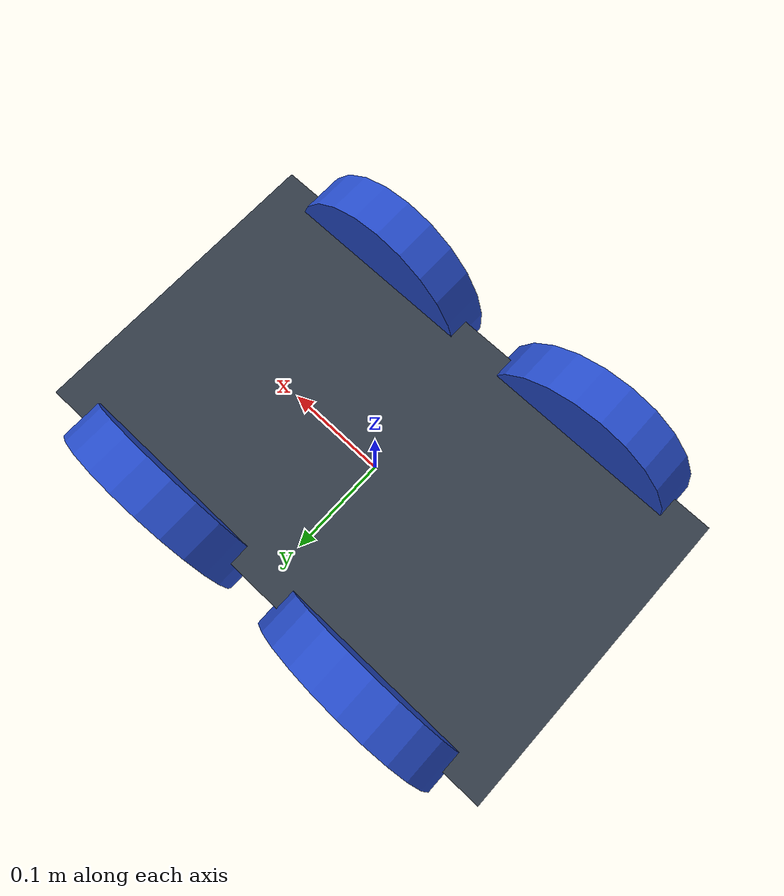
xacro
<?xml version="1.0" ?>
<robot name="mybot" xmlns:xacro="https://www.ros.org/wiki/xacro" >
<material name="black">
 <color rgba="0.0 0.0 0.0 1.0"/>
 </material>
 <material name="blue">
 <color rgba="0.203125 0.23828125 0.28515625 1.0"/>
 </material>
 <material name="green">
 <color rgba="0.0 0.8 0.0 1.0"/>
 </material>
 <material name="grey">
 <color rgba="0.2 0.2 0.2 1.0"/>
 </material>
 <material name="orange">
 <color rgba="1.0 0.423529411765 0.0392156862745 1.0"/>
 </material>
 <material name="brown">
 <color rgba="0.870588235294 0.811764705882 0.764705882353 1.0"/>
 </material>
 <material name="red">
 <color rgba="0.80078125 0.12890625 0.1328125 1.0"/>
 </material>
 <material name="white">
 <color rgba="1.0 1.0 1.0 1.0"/>
 </material>

 <gazebo reference="link_chassis">
 <material>Gazebo/Red</material>
 </gazebo>
 <gazebo reference="link_left_wheel_f">
 <material>Gazebo/Blue</material>
 </gazebo>
 <gazebo reference="link_right_wheel_f">
 <material>Gazebo/Blue</material>
 </gazebo>
 <gazebo reference="link_left_wheel_b">
 <material>Gazebo/Blue</material>
 </gazebo>
 <gazebo reference="link_right_wheel_b">
 <material>Gazebo/Blue</material>
 </gazebo>

<gazebo>
  <plugin name="skid_steer_drive_controller" filename="libgazebo_ros_skid_steer_drive.so">
    <updateRate>100.0</updateRate>
    <robotNamespace>/</robotNamespace>
    <leftFrontJoint>joint_left_wheel_f</leftFrontJoint>
    <rightFrontJoint>joint_right_wheel_f</rightFrontJoint>
    <leftRearJoint>joint_left_wheel_b</leftRearJoint>
    <rightRearJoint>joint_right_wheel_b</rightRearJoint>
    <wheelSeparation>0.4</wheelSeparation>
    <wheelDiameter>0.215</wheelDiameter>
    <robotBaseFrame>link_chassis</robotBaseFrame>
    <torque>20</torque>
    <topicName>cmd_vel</topicName>
    <broadcastTF>false</broadcastTF>
  </plugin>
</gazebo>

<link name="link_chassis">
 <!-- pose and inertial -->
 <pose>0 0 0.1 0 0 0</pose>
 <inertial>
    <mass value="5"/>
    <origin rpy="0 0 0" xyz="0 0 0.1"/>
    <inertia ixx="0.0395416666667" ixy="0" ixz="0" iyy="0.106208333333" iyz="0" izz="0.106208333333"/>
 </inertial>

 <!---Body-->
 <collision name="collision_chassis">
    <geometry>
        <box size="0.5 0.3 0.07"/>
    </geometry>
 </collision>
 <visual>
    <origin rpy="0 0 0" xyz="0 0 0"/>
    <geometry>
        <box size="0.5 0.3 0.07"/>
    </geometry>
    <material name="blue"/>
 </visual>
</link>

 <!-- Wheel Right Front -->

 <link name="link_right_wheel_f">
 <inertial>
    <mass value="0.2"/>
    <origin rpy="0 1.5707 1.5707" xyz="0 0 0"/>
    <inertia ixx="0.00052666666" ixy="0" ixz="0" iyy="0.00052666666" iyz="0" izz="0.001"/>
 </inertial>

 <collision name="link_right_wheel_f_collision">
    <origin rpy="0 1.5707 1.5707" xyz="0 0 0" />
       <geometry>
        <cylinder length="0.04" radius="0.1"/>
    </geometry>
</collision>

 <visual name="link_right_wheel_f_visual">
    <origin rpy="0 1.5707 1.5707" xyz="0 0 0"/>
    <geometry>
        <cylinder length="0.04" radius="0.1"/>
    </geometry>
 </visual>
</link>

 <!-- Joint for right wheel front -->
 <joint name="joint_right_wheel_f" type="continuous">
    <origin rpy="0 0 0" xyz="-0.12 0.15 0"/>
    <child link="link_right_wheel_f" />
    <parent link="link_chassis"/>
    <axis rpy="0 0 0" xyz="0 1 0"/>
    <limit effort="10000" velocity="1000"/>
    <joint_properties damping="1.0" friction="1.0" />
 </joint>

 <!-- Wheel Right Back-->

 <link name="link_right_wheel_b">
 <inertial>
    <mass value="0.2"/>
    <origin rpy="0 1.5707 1.5707" xyz="0 0 0"/>
    <inertia ixx="0.00052666666" ixy="0" ixz="0" iyy="0.00052666666" iyz="0" izz="0.001"/>
 </inertial>

 <collision name="link_right_wheel_b_collision">
    <origin rpy="0 1.5707 1.5707" xyz="0 0 0" />
    <geometry>
        <cylinder length="0.04" radius="0.1"/>
    </geometry>
</collision>

 <visual name="link_right_wheel_b_visual">
    <origin rpy="0 1.5707 1.5707" xyz="0 0 0"/>
    <geometry>
        <cylinder length="0.04" radius="0.1"/>
    </geometry>
 </visual>
</link>

  <!-- Joint for right wheel back -->
 <joint name="joint_right_wheel_b" type="continuous">
    <origin rpy="0 0 0" xyz="0.12 0.15 0"/>
    <child link="link_right_wheel_b" />
    <parent link="link_chassis"/>
    <axis rpy="0 0 0" xyz="0 1 0"/>
    <limit effort="10000" velocity="1000"/>
    <joint_properties damping="1.0" friction="1.0" />
 </joint>

<!-- Left Wheel link  Front -->

<link name="link_left_wheel_f">
 <inertial>
     <mass value="0.2"/>
    <origin rpy="0 1.5707 1.5707" xyz="0 0 0"/>
    <inertia ixx="0.00052666666" ixy="0" ixz="0" iyy="0.00052666666" iyz="0" izz="0.001"/>
 </inertial>

 <collision name="link_left_wheel_f_collision">
     <origin rpy="0 1.5707 1.5707" xyz="0 0 0" />
    <geometry>
        <cylinder length="0.04" radius="0.1"/>
    </geometry>
 </collision>

 <visual name="link_left_wheel_f_visual">
    <origin rpy="0 1.5707 1.5707" xyz="0 0 0"/>
    <geometry>
       <cylinder length="0.04" radius="0.1"/>
    </geometry>
 </visual>
 </link>

<!-- Joint for left wheel front  -->
 <joint name="joint_left_wheel_f" type="continuous">
    <origin rpy="0 0 0" xyz="-0.12 -0.15 0"/>
    <child link="link_left_wheel_f" />
    <parent link="link_chassis"/>
    <axis rpy="0 0 0" xyz="0 1 0"/>
    <limit effort="10000" velocity="1000"/>
    <joint_properties damping="1.0" friction="1.0" />
 </joint>

<!-- Left Wheel link  Back -->

<link name="link_left_wheel_b">
 <inertial>
     <mass value="0.2"/>
    <origin rpy="0 1.5707 1.5707" xyz="0 0 0"/>
    <inertia ixx="0.00052666666" ixy="0" ixz="0" iyy="0.00052666666" iyz="0" izz="0.001"/>
 </inertial>

 <collision name="link_left_wheel_b_collision">
     <origin rpy="0 1.5707 1.5707" xyz="0 0 0" />
    <geometry>
        <cylinder length="0.04" radius="0.1"/>
    </geometry>
 </collision>

 <visual name="link_left_wheel_b_visual">
    <origin rpy="0 1.5707 1.5707" xyz="0 0 0"/>
    <geometry>
       <cylinder length="0.04" radius="0.1"/>
    </geometry>
 </visual>
 </link>

<!-- Joint for left wheel Back  -->
 <joint name="joint_left_wheel_b" type="continuous">
    <origin rpy="0 0 0" xyz="0.12 -0.15 0"/>
    <child link="link_left_wheel_b" />
    <parent link="link_chassis"/>
    <axis rpy="0 0 0" xyz="0 1 0"/>
    <limit effort="10000" velocity="1000"/>
    <joint_properties damping="1.0" friction="1.0" />
 </joint>

</robot>
